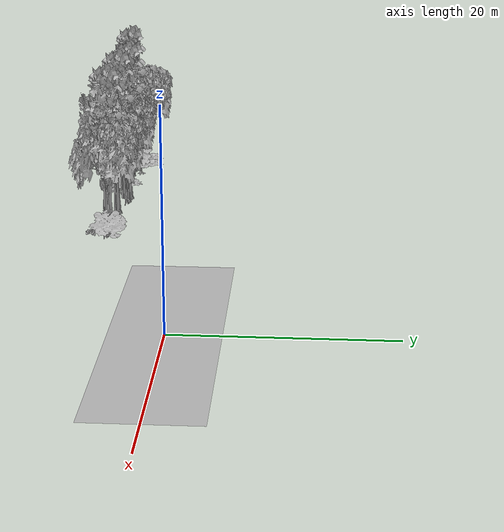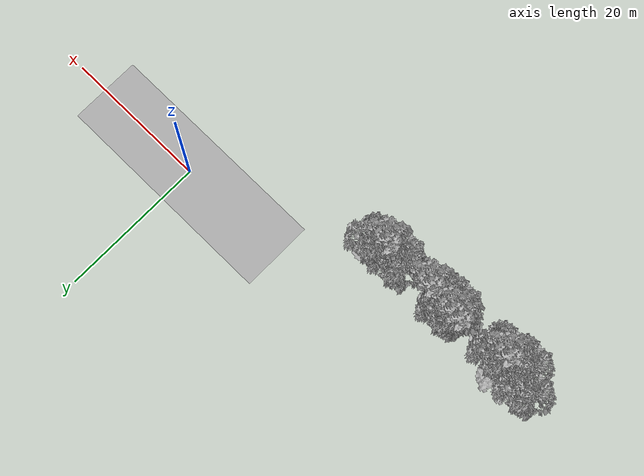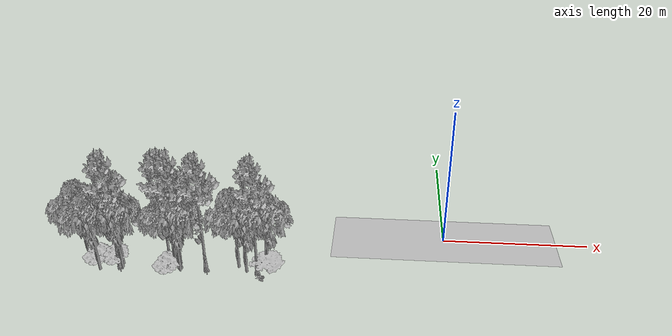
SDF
<sdf version="1.7">
 <world name="default">
  <model name="ground_plane">
   <static>1</static>
   <link name="link">
    <collision name="collision">
     <pose>-50 0 0 0 -0 0</pose>
     <geometry><plane><normal>0 0 1</normal><size>100 100</size></plane></geometry>
     <surface><contact><ode><min_depth>0.01</min_depth><max_vel>0</max_vel></ode></contact></surface>
    </collision>
    <visual name="grass">
     <cast_shadows>0</cast_shadows>
     <geometry>
      <mesh>
       <scale>0.5814285714285714 0.18142857142857144 0.1</scale>
       <uri>file://grass_plane/meshes/grass_plane.dae</uri>
      </mesh>
     </geometry>
    </visual>
   </link>
  </model>
  <model name="Tree 5">
   <static>1</static>
   <pose>-26.627906791301722 -9.05891376173643 0 1.57079 -0 0</pose>
   <link name="link">
    <collision name="collision">
     <geometry><mesh><scale>3.5 5 3.5</scale><uri>model://tree_2/meshes/tree_2.obj</uri></mesh></geometry>
    </collision>
    <visual name="visual">
     <geometry><mesh><scale>3.5 5 3.5</scale><uri>model://tree_2/meshes/tree_2.obj</uri></mesh></geometry>
    </visual>
   </link>
  </model>
  <model name="Tree 24">
   <static>1</static>
   <pose>-46.3371986453799 -9.924449364917294 0 1.57079 -0 0</pose>
   <link name="link">
    <collision name="collision">
     <geometry><mesh><scale>3.5 5 3.5</scale><uri>model://tree_2/meshes/tree_2.obj</uri></mesh></geometry>
    </collision>
    <visual name="visual">
     <geometry><mesh><scale>3.5 5 3.5</scale><uri>model://tree_2/meshes/tree_2.obj</uri></mesh></geometry>
    </visual>
   </link>
  </model>
  <model name="Tree 37">
   <static>1</static>
   <pose>-43.933003419726695 -8.920598598171168 0 1.57079 -0 0</pose>
   <link name="link">
    <collision name="collision">
     <geometry><mesh><scale>3.5 5 3.5</scale><uri>model://tree_9/meshes/tree_9.obj</uri></mesh></geometry>
    </collision>
    <visual name="visual">
     <geometry><mesh><scale>3.5 5 3.5</scale><uri>model://tree_9/meshes/tree_9.obj</uri></mesh></geometry>
    </visual>
   </link>
  </model>
  <model name="Tree 54">
   <static>1</static>
   <pose>-47.25228393686099 -8.091556104227386 0 1.57079 -0 0</pose>
   <link name="link">
    <collision name="collision">
     <geometry><mesh><scale>4 2.5 4</scale><uri>model://tree_1/meshes/tree_1.obj</uri></mesh></geometry>
    </collision>
    <visual name="visual">
     <geometry><mesh><scale>4 2.5 4</scale><uri>model://tree_1/meshes/tree_1.obj</uri></mesh></geometry>
    </visual>
   </link>
  </model>
  <model name="Tree 59">
   <static>1</static>
   <pose>-48.6570979296232 -7.548154350008392 0 1.57079 -0 0</pose>
   <link name="link">
    <collision name="collision">
     <geometry><mesh><scale>3.5 5 3.5</scale><uri>model://tree_2/meshes/tree_2.obj</uri></mesh></geometry>
    </collision>
    <visual name="visual">
     <geometry><mesh><scale>3.5 5 3.5</scale><uri>model://tree_2/meshes/tree_2.obj</uri></mesh></geometry>
    </visual>
   </link>
  </model>
  <model name="Tree 61">
   <static>1</static>
   <pose>-23.915137507496894 -8.2335381083434 0 1.57079 -0 0</pose>
   <link name="link">
    <collision name="collision">
     <geometry><mesh><scale>3.5 5 3.5</scale><uri>model://tree_2/meshes/tree_2.obj</uri></mesh></geometry>
    </collision>
    <visual name="visual">
     <geometry><mesh><scale>3.5 5 3.5</scale><uri>model://tree_2/meshes/tree_2.obj</uri></mesh></geometry>
    </visual>
   </link>
  </model>
  <model name="Tree 82">
   <static>1</static>
   <pose>-25.16903294130209 -8.88107428817848 0 1.57079 -0 0</pose>
   <link name="link">
    <collision name="collision">
     <geometry><mesh><scale>3.5 5 3.5</scale><uri>model://tree_9/meshes/tree_9.obj</uri></mesh></geometry>
    </collision>
    <visual name="visual">
     <geometry><mesh><scale>3.5 5 3.5</scale><uri>model://tree_9/meshes/tree_9.obj</uri></mesh></geometry>
    </visual>
   </link>
  </model>
  <model name="Tree 105">
   <static>1</static>
   <pose>-43.453585702268605 -9.267200880738908 0 1.57079 -0 0</pose>
   <link name="link">
    <collision name="collision">
     <geometry><mesh><scale>3.5 5 3.5</scale><uri>model://tree_2/meshes/tree_2.obj</uri></mesh></geometry>
    </collision>
    <visual name="visual">
     <geometry><mesh><scale>3.5 5 3.5</scale><uri>model://tree_2/meshes/tree_2.obj</uri></mesh></geometry>
    </visual>
   </link>
  </model>
  <model name="Tree 200">
   <static>1</static>
   <pose>-36.315694243021184 -8.512989018925415 0 1.57079 -0 0</pose>
   <link name="link">
    <collision name="collision">
     <geometry><mesh><scale>3.5 5 3.5</scale><uri>model://tree_2/meshes/tree_2.obj</uri></mesh></geometry>
    </collision>
    <visual name="visual">
     <geometry><mesh><scale>3.5 5 3.5</scale><uri>model://tree_2/meshes/tree_2.obj</uri></mesh></geometry>
    </visual>
   </link>
  </model>
  <model name="Tree 222">
   <static>1</static>
   <pose>-35.952351521223264 -8.247904839160096 0 1.57079 -0 0</pose>
   <link name="link">
    <collision name="collision">
     <geometry><mesh><scale>3.5 5 3.5</scale><uri>model://tree_2/meshes/tree_2.obj</uri></mesh></geometry>
    </collision>
    <visual name="visual">
     <geometry><mesh><scale>3.5 5 3.5</scale><uri>model://tree_2/meshes/tree_2.obj</uri></mesh></geometry>
    </visual>
   </link>
  </model>
  <model name="Tree 257">
   <static>1</static>
   <pose>-44.85070811042039 -7.834992782915626 0 1.57079 -0 0</pose>
   <link name="link">
    <collision name="collision">
     <geometry><mesh><scale>4 2.5 4</scale><uri>model://tree_1/meshes/tree_1.obj</uri></mesh></geometry>
    </collision>
    <visual name="visual">
     <geometry><mesh><scale>4 2.5 4</scale><uri>model://tree_1/meshes/tree_1.obj</uri></mesh></geometry>
    </visual>
   </link>
  </model>
  <model name="Tree 301">
   <static>1</static>
   <pose>-35.737341295330864 -8.602410484219044 0 1.57079 -0 0</pose>
   <link name="link">
    <collision name="collision">
     <geometry><mesh><scale>3.5 5 3.5</scale><uri>model://tree_2/meshes/tree_2.obj</uri></mesh></geometry>
    </collision>
    <visual name="visual">
     <geometry><mesh><scale>3.5 5 3.5</scale><uri>model://tree_2/meshes/tree_2.obj</uri></mesh></geometry>
    </visual>
   </link>
  </model>
  <model name="Tree 316">
   <static>1</static>
   <pose>-37.1362569199456 -8.085520986241942 0 1.57079 -0 0</pose>
   <link name="link">
    <collision name="collision">
     <geometry><mesh><scale>3.5 5 3.5</scale><uri>model://tree_9/meshes/tree_9.obj</uri></mesh></geometry>
    </collision>
    <visual name="visual">
     <geometry><mesh><scale>3.5 5 3.5</scale><uri>model://tree_9/meshes/tree_9.obj</uri></mesh></geometry>
    </visual>
   </link>
  </model>
  <model name="Tree 325">
   <static>1</static>
   <pose>-43.57858007691755 -8.576345855762757 0 1.57079 -0 0</pose>
   <link name="link">
    <collision name="collision">
     <geometry><mesh><scale>3.5 5 3.5</scale><uri>model://tree_2/meshes/tree_2.obj</uri></mesh></geometry>
    </collision>
    <visual name="visual">
     <geometry><mesh><scale>3.5 5 3.5</scale><uri>model://tree_2/meshes/tree_2.obj</uri></mesh></geometry>
    </visual>
   </link>
  </model>
  <model name="Tree 361">
   <static>1</static>
   <pose>-32.15043764455437 -8.68295873562073 0 1.57079 -0 0</pose>
   <link name="link">
    <collision name="collision">
     <geometry><mesh><scale>3.5 5 3.5</scale><uri>model://tree_9/meshes/tree_9.obj</uri></mesh></geometry>
    </collision>
    <visual name="visual">
     <geometry><mesh><scale>3.5 5 3.5</scale><uri>model://tree_9/meshes/tree_9.obj</uri></mesh></geometry>
    </visual>
   </link>
  </model>
  <model name="Tree 385">
   <static>1</static>
   <pose>-35.89411928478983 -8.223323391817168 0 1.57079 -0 0</pose>
   <link name="link">
    <collision name="collision">
     <geometry><mesh><scale>3.5 5 3.5</scale><uri>model://tree_9/meshes/tree_9.obj</uri></mesh></geometry>
    </collision>
    <visual name="visual">
     <geometry><mesh><scale>3.5 5 3.5</scale><uri>model://tree_9/meshes/tree_9.obj</uri></mesh></geometry>
    </visual>
   </link>
  </model>
  <model name="Tree 398">
   <static>1</static>
   <pose>-35.5487625413965 -9.394992680654312 0 1.57079 -0 0</pose>
   <link name="link">
    <collision name="collision">
     <geometry><mesh><scale>3.5 5 3.5</scale><uri>model://tree_2/meshes/tree_2.obj</uri></mesh></geometry>
    </collision>
    <visual name="visual">
     <geometry><mesh><scale>3.5 5 3.5</scale><uri>model://tree_2/meshes/tree_2.obj</uri></mesh></geometry>
    </visual>
   </link>
  </model>
  <model name="Tree 405">
   <static>1</static>
   <pose>-23.821628200121264 -8.528838847820086 0 1.57079 -0 0</pose>
   <link name="link">
    <collision name="collision">
     <geometry><mesh><scale>3 2 3</scale><uri>model://tree_3/meshes/tree_3.obj</uri></mesh></geometry>
    </collision>
    <visual name="visual">
     <geometry><mesh><scale>3 2 3</scale><uri>model://tree_3/meshes/tree_3.obj</uri></mesh></geometry>
    </visual>
   </link>
  </model>
  <model name="Tree 470">
   <static>1</static>
   <pose>-35.88212214660535 -7.9542220928968 0 1.57079 -0 0</pose>
   <link name="link">
    <collision name="collision">
     <geometry><mesh><scale>3.5 5 3.5</scale><uri>model://tree_2/meshes/tree_2.obj</uri></mesh></geometry>
    </collision>
    <visual name="visual">
     <geometry><mesh><scale>3.5 5 3.5</scale><uri>model://tree_2/meshes/tree_2.obj</uri></mesh></geometry>
    </visual>
   </link>
  </model>
  <model name="Tree 480">
   <static>1</static>
   <pose>-37.342192137458284 -9.262725460670692 0 1.57079 -0 0</pose>
   <link name="link">
    <collision name="collision">
     <geometry><mesh><scale>4 2.5 4</scale><uri>model://tree_1/meshes/tree_1.obj</uri></mesh></geometry>
    </collision>
    <visual name="visual">
     <geometry><mesh><scale>4 2.5 4</scale><uri>model://tree_1/meshes/tree_1.obj</uri></mesh></geometry>
    </visual>
   </link>
  </model>
  <model name="Tree 515">
   <static>1</static>
   <pose>-27.860277999659115 -8.130082769864236 0 1.57079 -0 0</pose>
   <link name="link">
    <collision name="collision">
     <geometry><mesh><scale>3.5 5 3.5</scale><uri>model://tree_2/meshes/tree_2.obj</uri></mesh></geometry>
    </collision>
    <visual name="visual">
     <geometry><mesh><scale>3.5 5 3.5</scale><uri>model://tree_2/meshes/tree_2.obj</uri></mesh></geometry>
    </visual>
   </link>
  </model>
  <model name="Bush 1">
   <static>1</static>
   <pose>-24.511245252070374 -10.372981323838083 0 1.57079 -0 0</pose>
   <link name="link">
    <collision name="collision">
     <geometry><mesh><scale>2 2 2</scale><uri>model://bush_2/meshes/bush_2.obj</uri></mesh></geometry>
     <surface><contact><collide_without_contact>false</collide_without_contact></contact></surface>
    </collision>
    <visual name="visual">
     <geometry><mesh><scale>2 2 2</scale><uri>model://bush_2/meshes/bush_2.obj</uri></mesh></geometry>
    </visual>
   </link>
  </model>
 </world>
</sdf>
